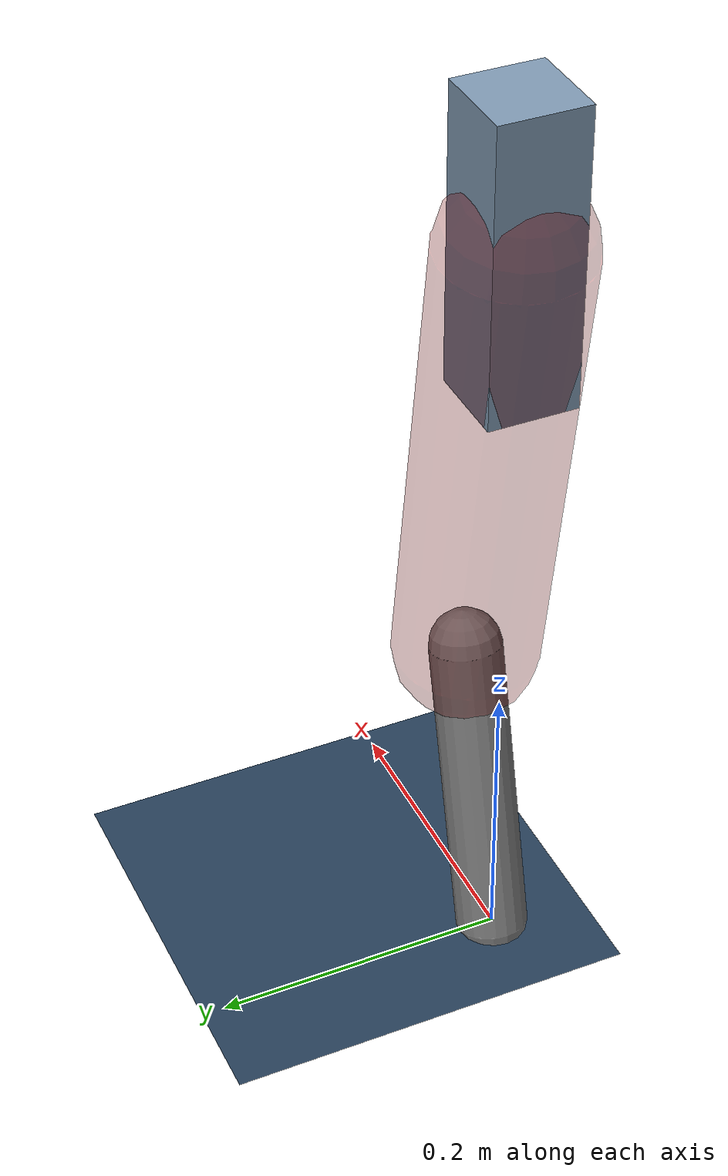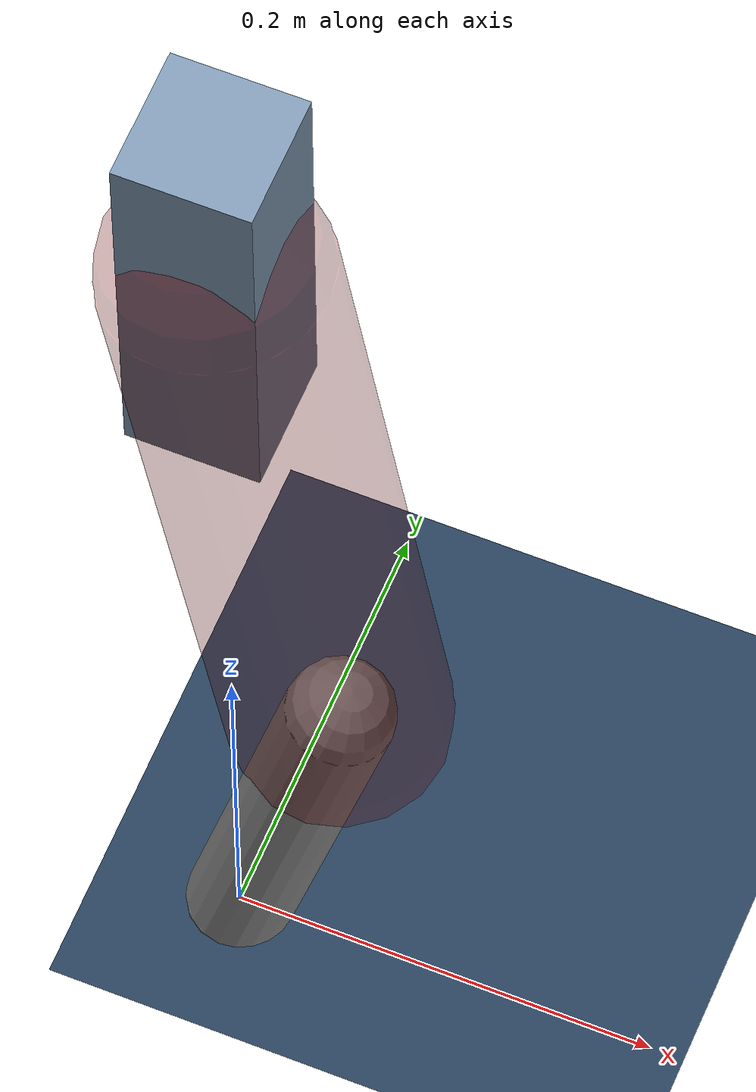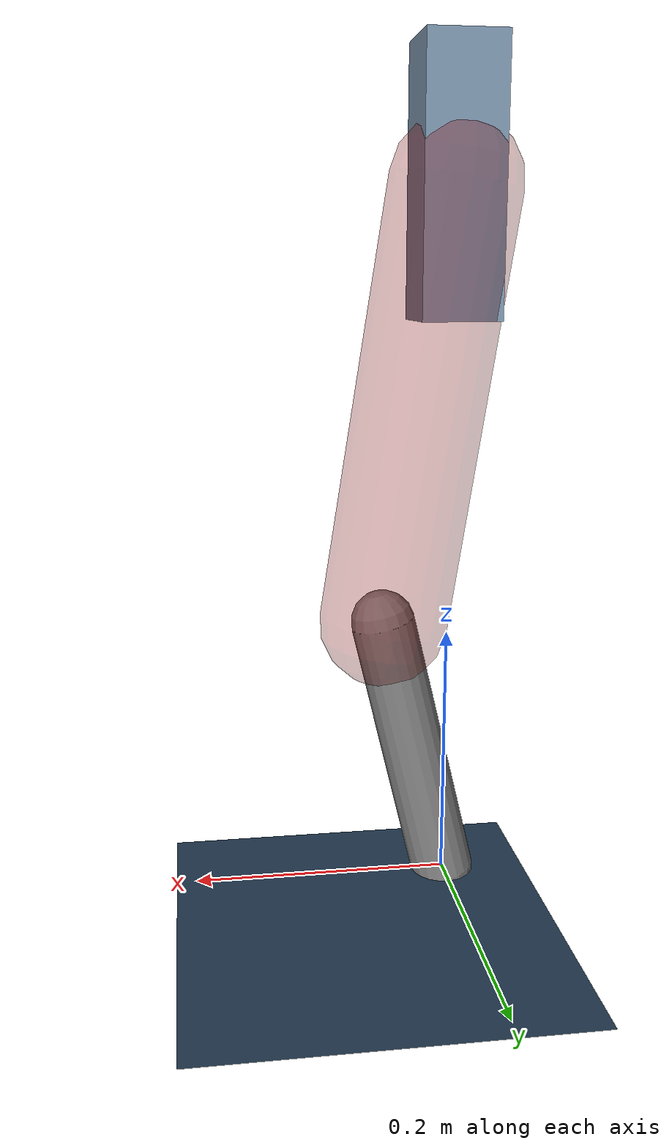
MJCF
<mujoco model="Hopper2D">
	<compiler inertiafromgeom="true" angle="radian" />
	<option timestep="0.001" integrator="implicit" cone="elliptic" solver="Newton" tolerance="1e-10" />

	<default>
		<geom contype="1" conaffinity="1" condim="3" friction="2 0.005 0.0001" solref="0.005 1" />
		<joint limited="true" damping="0.1" />
	</default>

	<asset>
		<texture name="skybox" type="skybox" builtin="gradient" rgb1=".4 .6 .8" rgb2="0 0 0" width="800" height="800" />
		<texture name="grid" type="2d" builtin="checker" rgb1=".1 .2 .3" rgb2=".2 .3 .4" width="300" height="300" mark="edge" markrgb=".2 .3 .4" />
		<material name="ground" texture="grid" texrepeat="1 1" texuniform="true" reflectance="0.1" />
		<material name="leg" rgba="0.5 0.6 0.7 1" />
	</asset>

	<worldbody>

		<geom name="floor" type="plane" size="5 5 0.25" material="ground" />

		<light directional="false" diffuse="0.8 0.8 0.8" specular="0.3 0.3 0.3" pos="0 0 2" dir="0 0 -1" />
		<light mode="targetbodycom" target="base" directional="false" diffuse="0.8 0.8 0.8" specular="0.3 0.3 0.3" pos="0 0 2" dir="0 0 -1" />

		<camera name="fixed" pos="0 -2 1" xyaxes="1 0 0 0 0 1" />
		<camera name="tracking" mode="trackcom" pos="0 -3 1" />

		<body name="root" pos="0 0 0.5431480251612486">
			<joint name="slide_x" type="slide" axis="1 0 0" range="-100 100" />
			<joint name="slide_z" type="slide" axis="0 0 1" range="0 10" />

			<body name="base" pos="0 0 0">
				<geom name="torso" type="box" size="0.03 0.03 0.1" mass="1.869" material="leg" />

				<body name="link1" pos="0 0 0" euler="0 1.418123215574772 0">
					<joint type="hinge" axis="0 -1 0" pos="0 0 0" name="hinge1" limited="true" range="-3.14 3.14" stiffness="0" damping="0.1" />
					<geom name="thigh" type="capsule" fromto="0 0 0 0.33591919081040306 0 0" size="0.05" rgba="0.5 0 0 0.3" mass="1.0872737342691283" />

					<body name="link2" pos="0.33591919081040306 0 0" euler="0 0.3900718738026734 0">
						<joint type="hinge" axis="0 -1 0" pos="0 0 0" name="hinge2" limited="true" range="-3.14 3.14" stiffness="0" damping="0.1" />
						<geom name="shank" type="capsule" fromto="0 0 0 0.2172288343508455 0 0" size="0.025" mass="0.4153830674806764" />

					</body>
				</body>
			</body>
		</body>
	</worldbody>

	<actuator>
		<motor name="torque1" joint="hinge1" ctrlrange="-62.18174367595188 62.18174367595188" ctrllimited="true" gear="1" />
		<motor name="torque2" joint="hinge2" ctrlrange="-81.9188924395647 81.9188924395647" ctrllimited="true" gear="1" />
	</actuator>
</mujoco>
